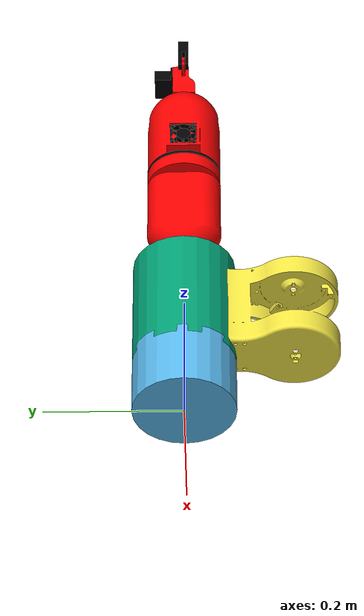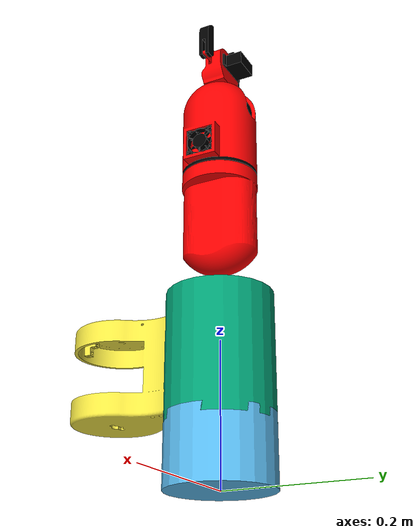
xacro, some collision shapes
<?xml version="1.0"?>
<robot xmlns:xacro="http://www.ros.org/wiki/xacro" name="thor_arm">

    <!-- Load Simulated or Real Hardware Interfaces -->
    <xacro:arg name="is_sim" default="true"/>

    <!-- Include Gazebo Parameters -->
    <xacro:include filename="$(find thor_urdf)/urdf/thor_gazebo.xacro" />

    <!-- Include ros2_control Plugins -->
    <xacro:include filename="$(find thor_urdf)/urdf/thor_arm.ros2_control.xacro" />

    <!-- Useful XACRO Variables (Properties) -->
    <xacro:property name="PI" value="3.14159265359" />
    <xacro:property name="effort" value="4.0" />
    <xacro:property name="velocity" value="1.0" />

    <!-- Useful Macros -->
    <xacro:macro name="default_inertial" params="mass">
        <inertial>
            <origin xyz="0 0 0" rpy="0 0 0"/>
            <mass value="${mass}" />
            <inertia ixx="1.0" ixy="0.0" ixz="0.0"
                     iyy="1.0" iyz="0.0"
                     izz="1.0" />
        </inertial>
    </xacro:macro>

    <!-- Links -->
    <link name="world"/>

    <link name="base_link">
        <xacro:default_inertial mass="1.0"/>
        <visual>
            <origin xyz="0 0 0" rpy="0 0 -${PI / 2}"/>
            <geometry>
              <mesh filename="package://thor_urdf/meshes/Base.dae" scale="0.001 0.001 0.001" />
            </geometry>
        </visual>
        <collision>
            <origin xyz="0 0 0.049" rpy="0 0 -${PI / 2}"/>
            <geometry>
                <cylinder radius="0.075" length="0.098"/>
            </geometry>
        </collision>
        <collision>
            <origin xyz="0 -0.1312686 0.035250" rpy="0 0 -${PI / 2}"/>
            <geometry>
                <box size="0.176 0.180 0.0705"/>
            </geometry>
        </collision>
    </link>

    <link name="link_1">
        <xacro:default_inertial mass="1.0"/>
        <visual>
            <origin xyz="0 0 0" rpy="0 0 -${PI / 2}"/>
            <geometry>
              <mesh filename="package://thor_urdf/meshes/Art1.dae" scale="0.001 0.001 0.001" />
            </geometry>
        </visual>
        <collision>
            <origin xyz="0 0 0.0765" rpy="0 0 -${PI / 2}"/>
            <geometry>
                <cylinder radius="0.075" length="0.179"/>
            </geometry>
        </collision>
    </link>

    <link name="link_2">
        <xacro:default_inertial mass="1.0"/>
        <visual>
            <origin xyz="0 0 0" rpy="0 0 -${PI / 2}"/>
            <geometry>
              <mesh filename="package://thor_urdf/meshes/Art2.dae" scale="0.001 0.001 0.001" />
            </geometry>
        </visual>
        <collision>
            <origin xyz="0 0 0" rpy="${PI / 2} 0 -${PI / 2}"/>
            <geometry>
                <cylinder radius="0.065" length="0.140"/>
            </geometry>
        </collision>
        <collision>
            <origin xyz="0 0 0.080" rpy="${PI / 2} 0 -${PI / 2}"/>
            <geometry>
                <box size="0.130 0.160 0.140"/>
            </geometry>
        </collision>
        <collision>
            <origin xyz="0 0 0.160" rpy="${PI / 2} 0 -${PI / 2}"/>
            <geometry>
                <cylinder radius="0.065" length="0.140"/>
            </geometry>
        </collision>
    </link>

    <link name="link_3">
        <xacro:default_inertial mass="1.0"/>
        <visual>
            <origin xyz="0 0 0" rpy="0 0 -${PI / 2}"/>
            <geometry>
              <mesh filename="package://thor_urdf/meshes/Art3.dae" scale="0.001 0.001 0.001" />
            </geometry>
        </visual>
        <collision>
            <origin xyz="0 0 0.01225" rpy="0 0 -${PI / 2}"/>
            <geometry>
                <cylinder radius="0.055" length="0.1525"/>
            </geometry>
        </collision>
    </link>

    <link name="link_4">
        <xacro:default_inertial mass="1.0"/>
        <visual>
            <origin xyz="0 0 0" rpy="0 0 -${PI / 2}"/>
            <geometry>
              <mesh filename="package://thor_urdf/meshes/Art4.dae" scale="0.001 0.001 0.001" />
            </geometry>
        </visual>
        <collision>
            <origin xyz="0 0 0.1045" rpy="0 0 -${PI / 2}"/>
            <geometry>
                <sphere radius="0.055"/>
            </geometry>
        </collision>
        <collision>
            <origin xyz="0 0 0.05525" rpy="0 0 -${PI / 2}"/>
            <geometry>
                <cylinder radius="0.055" length="0.1045"/>
            </geometry>
        </collision>
        <collision>
            <origin xyz="0 0 0.0295" rpy="0 0 -${PI / 2}"/>
            <geometry>
                <box size="0.050 0.132 0.050"/>
            </geometry>
        </collision>
    </link>

    <link name="link_5">
        <xacro:default_inertial mass="1.0"/>
        <visual>
            <origin xyz="0 0 0" rpy="0 0 -${PI / 2}"/>
            <geometry>
                <mesh filename="package://thor_urdf/meshes/Art5.dae" scale="0.001 0.001 0.001" />
            </geometry>
        </visual>
        <collision>
            <origin xyz="0 0 0" rpy="${PI / 2} 0 -${PI / 2}"/>
            <geometry>
                <cylinder radius="0.047" length="0.03"/>
            </geometry>
        </collision>
    </link>

    <link name="link_6">
        <xacro:default_inertial mass="1.0"/>
        <visual>
            <origin xyz="0 0 0" rpy="0 0 -${PI / 2}"/>
        <geometry>
            <mesh filename="package://thor_urdf/meshes/Art6.dae" scale="0.001 0.001 0.001" />
        </geometry>
        </visual>
        <collision>
            <origin xyz="0 0 0.025" rpy="0 0 -${PI / 2}"/>
            <geometry>
                <cylinder radius="0.015" length="0.05"/>
            </geometry>
        </collision>
    </link>

    <link name="gripper_base">
        <xacro:default_inertial mass="1.0"/>
        <visual>
            <origin xyz="0 0 0" rpy="0 0 0"/>
        <geometry>
            <mesh filename="package://thor_urdf/meshes/GripperBase.dae" scale="0.001 0.001 0.001" />
        </geometry>
        </visual>
        <collision>
            <origin xyz="0 0 0.0275" rpy="0 0 0"/>
            <geometry>
                <box size="0.065 0.0348 0.055"/>
            </geometry>
        </collision>
        <collision>
            <origin xyz="-0.004250 0.03125 0.0325" rpy="0 0 0"/>
            <geometry>
                <box size="0.0406 0.0277 0.020"/>
            </geometry>
        </collision>
    </link>

    <link name="gripper_mid_point">
        <xacro:default_inertial mass="1.0"/>
    </link>

    <link name="gripper_arm_gear_right">
        <xacro:default_inertial mass="1.0"/>
        <visual>
            <origin xyz="0 0 0" rpy="0 -${PI / 2} ${PI / 2}"/>
        <geometry>
            <mesh filename="package://thor_urdf/meshes/GripperArmGear.dae" scale="0.001 0.001 0.001" />
        </geometry>
        </visual>
        <collision>
            <origin xyz="0.0175 -0.0025 0.0" rpy="0 0 0"/>
            <geometry>
                <box size="0.035 0.005 0.004"/>
            </geometry>
        </collision>
    </link>

    <link name="gripper_arm_gear_left">
        <xacro:default_inertial mass="1.0"/>
        <visual>
            <origin xyz="0 0 0" rpy="0 ${PI / 2} -${PI / 2}"/>
        <geometry>
            <mesh filename="package://thor_urdf/meshes/GripperArmGear.dae" scale="0.001 0.001 0.001" />
        </geometry>
        </visual>
        <collision>
            <origin xyz="-0.0175 -0.0025 0.0" rpy="0 0 0"/>
            <geometry>
                <box size="0.035 0.005 0.004"/>
            </geometry>
        </collision>
    </link>

    <link name="gripper_arm_simple_right">
        <xacro:default_inertial mass="1.0"/>
        <visual>
            <origin xyz="0 0 0" rpy="0 -${PI / 2} ${PI / 2}"/>
        <geometry>
            <mesh filename="package://thor_urdf/meshes/GripperArm.dae" scale="0.001 0.001 0.001" />
        </geometry>
        </visual>
        <collision>
            <origin xyz="0.0175 -0.0025 0.0" rpy="0 0 0"/>
            <geometry>
                <box size="0.035 0.005 0.004"/>
            </geometry>
        </collision>
    </link>

    <link name="gripper_arm_simple_left">
        <xacro:default_inertial mass="1.0"/>
        <visual>
            <origin xyz="0 0 0" rpy="0 ${PI / 2} -${PI / 2}"/>
        <geometry>
            <mesh filename="package://thor_urdf/meshes/GripperArm.dae" scale="0.001 0.001 0.001" />
        </geometry>
        </visual>
        <collision>
            <origin xyz="-0.0175 -0.0025 0.0" rpy="0 0 0"/>
            <geometry>
                <box size="0.035 0.005 0.004"/>
            </geometry>
        </collision>
    </link>

    <link name="gripper_finger_right">
        <xacro:default_inertial mass="1.0"/>
        <visual>
            <origin xyz="0 0 0" rpy="0 0 0"/>
        <geometry>
            <mesh filename="package://thor_urdf/meshes/GripperFinger.dae" scale="0.001 0.001 0.001" />
        </geometry>
        </visual>
        <collision>
            <origin xyz="0.00525 0.026 0.00775" rpy="0 0 0"/>
            <geometry>
                <box size="0.0185 0.06 0.0155"/>
            </geometry>
        </collision>
    </link>

    <link name="gripper_finger_left">
        <xacro:default_inertial mass="1.0"/>
        <visual>
            <origin xyz="0 0 0" rpy="0 0 0"/>
        <geometry>
            <mesh filename="package://thor_urdf/meshes/GripperFinger.dae" scale="0.001 0.001 0.001" />
        </geometry>
        </visual>
        <collision>
            <origin xyz="0.00525 0.026 0.00775" rpy="0 0 0"/>
            <geometry>
                <box size="0.0185 0.06 0.0155"/>
            </geometry>
        </collision>
    </link>

    <!-- Joints -->
    <joint name="virtual_joint" type="fixed">
        <parent link="world"/>
        <child link="base_link"/>
        <origin xyz="0 0 0" rpy="0 0 0"/>
    </joint>

    <joint name ="joint_1" type="revolute">
        <parent link="base_link"/>
        <child link="link_1"/>
        <origin xyz="0 0 0.099" rpy="0 0 0"/>
        <axis xyz="0 0 1"/>
        <limit lower="-2.967" upper="2.967"
               effort="${effort}" velocity="0.58"/>
    </joint>

    <joint name="joint_2" type="revolute">
        <parent link="link_1"/>
        <child link="link_2"/>
        <origin xyz="0 0 0.103" rpy="0 0 0"/>
        <axis xyz="1 0 0"/>
        <limit lower="-${PI / 2}" upper="${PI / 2}"
               effort="${effort}" velocity="0.23"/>
    </joint>

    <joint name="joint_3" type="revolute">
        <parent link="link_2"/>
        <child link="link_3"/>
        <origin xyz="0 0 0.16" rpy="0 0 0"/>
        <axis xyz="1 0 0"/>
        <limit lower="-${PI / 2}" upper="${PI / 2}"
               effort="${effort}" velocity="0.23"/>
    </joint>

    <joint name="joint_4" type="revolute">
        <parent link="link_3"/>
        <child link="link_4"/>
        <origin xyz="0 0 0.0895" rpy="0 0 0"/>
        <axis xyz="0 0 1"/>
        <limit lower="-2.967" upper="2.967"
               effort="${effort}" velocity="0.58"/>
    </joint>

    <joint name="joint_5" type="revolute">
        <parent link="link_4"/>
        <child link="link_5"/>
        <origin xyz="0 0 0.1045" rpy="0 0 0"/>
        <axis xyz="1 0 0"/>
        <limit lower="-${PI / 2}" upper="${PI / 2}"
               effort="${effort}" velocity="1.45"/>
      </joint>

    <joint name="joint_6" type="revolute">
        <parent link="link_5"/>
        <child link="link_6"/>
        <origin xyz="0 0 0.0135" rpy="0 0 0"/>
        <axis xyz="0 0 1"/>
        <limit lower="-2.967" upper="2.967"
               effort="${effort}" velocity="1.45"/>
    </joint>

    <joint name ="link6_to_gripperbase" type="fixed">
        <parent link="link_6"/>
        <child link = "gripper_base"/>
        <origin xyz="0 0 0.043"/>
    </joint>

    <joint name="gripperbase_to_midpoint" type="fixed">
        <parent link="gripper_base"/>
        <child link="gripper_mid_point"/>
        <origin xyz="0 0 0.075" rpy="0 0 0"/>
    </joint>

    <joint name="gripperbase_to_armgearright" type="revolute">
        <parent link="gripper_base"/>
        <child link="gripper_arm_gear_right"/>
        <origin xyz="0.0145 0.00275 0.0325" rpy="0 0 0"/>
        <axis xyz="0 1 0"/>
        <limit lower="-${PI / 2}" upper="0"
               effort="${effort}" velocity="${velocity}"/>
    </joint>

    <joint name="gripperbase_to_armgearleft" type="revolute">
        <parent link="gripper_base"/>
        <child link="gripper_arm_gear_left"/>
        <origin xyz="-0.0145 0.00275 0.0325" rpy="0 0 0"/>
        <axis xyz="0 1 0"/>
        <limit lower="0" upper="${PI / 2}"
               effort="${effort}" velocity="${velocity}"/>
        <mimic joint="gripperbase_to_armgearright" multiplier="-1"/>
    </joint>

    <joint name="gripperbase_to_armsimpleright" type="revolute">
        <parent link="gripper_base"/>
        <child link="gripper_arm_simple_right"/>
        <origin xyz="0.006 0.00275 0.051" rpy="0 0 0"/>
        <axis xyz="0 1 0"/>
        <limit lower="-${PI / 2}" upper="0"
               effort="${effort}" velocity="${velocity}"/>
        <mimic joint="gripperbase_to_armgearright" multiplier="1"/>
    </joint>

    <joint name="gripperbase_to_armsimpleleft" type="revolute">
        <parent link="gripper_base"/>
        <child link="gripper_arm_simple_left"/>
        <origin xyz="-0.006 0.00275 0.051" rpy="0 0 0"/>
        <axis xyz="0 1 0"/>
        <limit lower="0" upper="${PI / 2}"
               effort="${effort}" velocity="${velocity}"/>
        <mimic joint="gripperbase_to_armgearright" multiplier="-1"/>
    </joint>

    <joint name="armgearright_to_fingerright" type="revolute">
        <parent link="gripper_arm_gear_right"/>
        <child link="gripper_finger_right"/>
        <origin xyz="0.035 -0.01023 0" rpy="-${PI / 2} ${PI} 0"/>
        <axis xyz="0 0 1"/>
        <limit lower="0" upper="${PI / 2}"
               effort="${effort}" velocity="${velocity}"/>
        <mimic joint="gripperbase_to_armgearright" multiplier="-1"/>
    </joint>

    <joint name="armgearleft_to_fingerleft" type="revolute">
        <parent link="gripper_arm_gear_left"/>
        <child link="gripper_finger_left"/>
        <origin xyz="-0.035 0.005175 0" rpy="${PI / 2} 0 0"/>
        <axis xyz="0 0 1"/>
        <limit lower="0" upper="${PI / 2}"
               effort="${effort}" velocity="${velocity}"/>
        <mimic joint="gripperbase_to_armgearright" multiplier="-1"/>
    </joint>

</robot>
